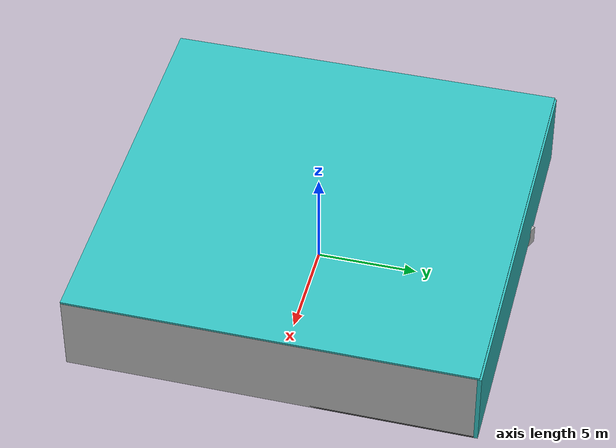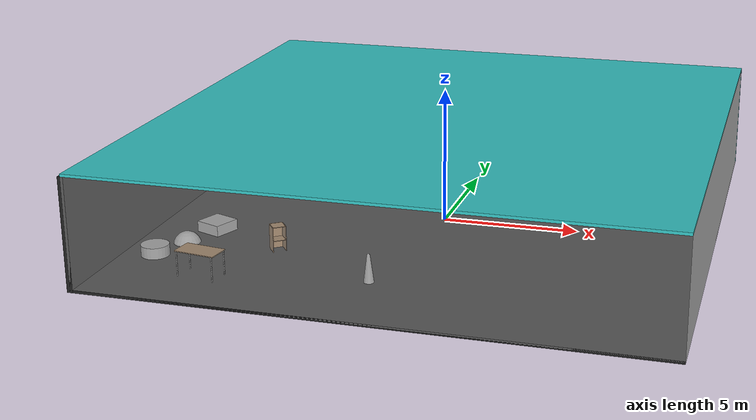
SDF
<sdf version="1.4">
 <world name="default">
  <physics type="ode">
   <max_step_size>0.001</max_step_size>
   <real_time_factor>1</real_time_factor>
   <real_time_update_rate>1000</real_time_update_rate>
   <gravity>0 0 -9.8</gravity>
  </physics>
  <scene><ambient>0.4 0.4 0.4 1</ambient><background>0.7 0.7 0.7 1</background><shadows>1</shadows></scene>
  <model name="Surrounding">
   <static>1</static>
   <link name="Ceiling">
    <collision name="Ceiling_Collision"><geometry><box><size>20 20 0.1</size></box></geometry></collision>
    <visual name="Ceiling_Visual">
     <geometry><box><size>20 20 0.1</size></box></geometry>
     <material>
      <script>
       <uri>file://media/materials/scripts/gazebo.material</uri>
       <name>Gazebo/TurquoiseGlowOutline</name>
      </script>
     </material>
    </visual>
    <pose>0 0 4.05 0 0 0</pose>
   </link>
   <link name="Wall_South">
    <collision name="Wall_South_Collision">
     <geometry><box><size>20 0 4</size></box></geometry>
     <pose>0 0 2 0 -0 0</pose>
    </collision>
    <visual name="Wall_South_Visual">
     <pose>0 0 2 0 -0 0</pose>
     <geometry><box><size>20 0 4</size></box></geometry>
     <material>
      <script><uri>file://media/materials/scripts/gazebo.material</uri><name>Gazebo/GreyTransparent</name></script>
     </material>
    </visual>
    <velocity_decay><linear>0</linear><angular>0</angular></velocity_decay>
    <pose>0 -10 0 0 -0 0</pose>
   </link>
   <link name="Wall_East">
    <collision name="Wall_21_Collision">
     <geometry><box><size>20 0 4</size></box></geometry>
     <pose>0 0 2 0 -0 0</pose>
    </collision>
    <visual name="Wall_21_Visual">
     <pose>0 0 2 0 -0 0</pose>
     <geometry><box><size>20 0 4</size></box></geometry>
     <material>
      <script><uri>file://media/materials/scripts/gazebo.material</uri><name>Gazebo/PioneerBody</name></script>
     </material>
    </visual>
    <velocity_decay><linear>0</linear><angular>0</angular></velocity_decay>
    <pose>10 0 0 0 -0 1.5708</pose>
   </link>
   <link name="Wall_North">
    <collision name="Wall_22_Collision">
     <geometry><box><size>20 0.2 4</size></box></geometry>
     <pose>0 0 2 0 -0 0</pose>
    </collision>
    <visual name="Wall_22_Visual">
     <pose>0 0 2 0 -0 0</pose>
     <geometry><box><size>20 0.2 4</size></box></geometry>
     <material>
      <script><uri>file://media/materials/scripts/gazebo.material</uri><name>Gazebo/TurquoiseGlow</name></script>
     </material>
    </visual>
    <velocity_decay><linear>0</linear><angular>0</angular></velocity_decay>
    <pose>0 10 0 0 -0 0</pose>
   </link>
   <link name="Wall_West">
    <collision name="Wall_23_Collision">
     <geometry><box><size>20 0.2 4</size></box></geometry>
     <pose>0 0 2 0 -0 0</pose>
    </collision>
    <visual name="Wall_23_Visual">
     <pose>0 0 2 0 -0 0</pose>
     <geometry><box><size>20 0.2 4</size></box></geometry>
     <material>
      <script><uri>file://media/materials/scripts/gazebo.material</uri><name>Gazebo/FlatBlack</name></script>
     </material>
    </visual>
    <velocity_decay><linear>0</linear><angular>0</angular></velocity_decay>
    <pose>-10 0 0 0 0 -1.5708</pose>
   </link>
   <link name="Ground_link">
    <collision name="collision">
     <pose>0 0 .05 0 -0 0</pose>
     <geometry><box><size>20 20 0.1</size></box></geometry>
    </collision>
    <visual name="visual">
     <pose>0 0 .05 0 -0 0</pose>
     <geometry><box><size>20 20 0.1</size></box></geometry>
     <material>
      <script><uri>file://media/materials/scripts/gazebo.material</uri><name>Gazebo/Black</name></script>
     </material>
    </visual>
   </link>
   <static>1</static>
  </model>
  <spherical_coordinates>
   <surface_model>EARTH_WGS84</surface_model>
   <latitude_deg>0</latitude_deg>
   <longitude_deg>0</longitude_deg>
   <elevation>0</elevation>
   <heading_deg>0</heading_deg>
  </spherical_coordinates>
  <light name="lightball_0" type="diffuse">
   <diffuse>0.8 0.8 0.8 1</diffuse>
   <specular>0.2 0.2 0.2 1</specular>
   <attenuation>
    <range>100</range>
    <constant>0.7</constant>
    <linear>0.01</linear>
    <quadratic>0.001</quadratic>
   </attenuation>
   <direction>-0.5 0.1 -0.9</direction>
   <pose>6.40358011946 -1.392949718 3.78622532758 0 0 0</pose>
  </light>
  <light name="lightball_1" type="diffuse">
   <diffuse>0.8 0.8 0.8 1</diffuse>
   <specular>0.2 0.2 0.2 1</specular>
   <attenuation>
    <range>100</range>
    <constant>0.7</constant>
    <linear>0.01</linear>
    <quadratic>0.001</quadratic>
   </attenuation>
   <direction>-0.5 0.1 -0.9</direction>
   <pose>-7.4299899187 -7.8426236565 2.88574096612 0 0 0</pose>
  </light>
  <light name="lightball_2" type="diffuse">
   <diffuse>0.8 0.8 0.8 1</diffuse>
   <specular>0.2 0.2 0.2 1</specular>
   <attenuation>
    <range>100</range>
    <constant>0.7</constant>
    <linear>0.01</linear>
    <quadratic>0.001</quadratic>
   </attenuation>
   <direction>-0.5 0.1 -0.9</direction>
   <pose>-0.0926352435098 5.20908102948 3.08021948596 0 0 0</pose>
  </light>
  <include><uri>model://table</uri><pose>-6.38971502615 -7.69991286838 0 0 0 2.9965689337</pose></include>
  <include>
   <uri>model://textured_shapes</uri>
   <pose>-8.17612364504 -4.98100636136 0 0 0 2.76731050413</pose>
  </include>
  <include><uri>model://cabinet</uri><pose>-4.77164624298 -4.80302826405 0 0 0 2.22843247343</pose></include>
  <include>
   <uri>model://textured_shapes</uri>
   <pose>-4.46685339849 8.24410431068 0 0 0 2.6938049553</pose>
  </include>
  <include>
   <uri>model://construction_cone</uri>
   <pose>-0.768899731013 -6.76802634182 0 0 0 2.29372718535</pose>
  </include>
  <include><uri>model://cabinet</uri><pose>4.65669411464 1.06646769629 0 0 0 1.86885308318</pose></include>
 </world>
</sdf>

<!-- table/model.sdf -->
<sdf version="1.5">
  <model name="table">
    <static>true</static>
    <link name="link">
      <collision name="surface">
        <pose>0 0 1.0 0 0 0</pose>
        <geometry>
          <box>
            <size>1.5 0.8 0.03</size>
          </box>
        </geometry>
        <surface>
          <friction>
            <ode>
              <mu>0.6</mu>
              <mu2>0.6</mu2>
            </ode>
          </friction>
        </surface>
      </collision>
      <visual name="visual1">
        <pose>0 0 1.0 0 0 0</pose>
        <geometry>
          <box>
            <size>1.5 0.8 0.03</size>
          </box>
        </geometry>
        <material>
          <script>
            <uri>model://media/materials/scripts/gazebo.material</uri>
            <name>Gazebo/Wood</name>
          </script>
        </material>
      </visual>
      <collision name="front_left_leg">
        <pose>0.68 0.38 0.5 0 0 0</pose>
        <geometry>
          <cylinder>
            <radius>0.02</radius>
            <length>1.0</length>
          </cylinder>
        </geometry>
      </collision>
      <visual name="front_left_leg">
        <pose>0.68 0.38 0.5 0 0 0</pose>
        <geometry>
          <cylinder>
            <radius>0.02</radius>
            <length>1.0</length>
          </cylinder>
        </geometry>
        <material>
          <script>
            <uri>model://media/materials/scripts/gazebo.material</uri>
            <name>Gazebo/Grey</name>
          </script>
        </material>
      </visual>
      <collision name="front_right_leg">
        <pose>0.68 -0.38 0.5 0 0 0</pose>
        <geometry>
          <cylinder>
            <radius>0.02</radius>
            <length>1.0</length>
          </cylinder>
        </geometry>
      </collision>
      <visual name="front_right_leg">
        <pose>0.68 -0.38 0.5 0 0 0</pose>
        <geometry>
          <cylinder>
            <radius>0.02</radius>
            <length>1.0</length>
          </cylinder>
        </geometry>
        <material>
          <script>
            <uri>model://media/materials/scripts/gazebo.material</uri>
            <name>Gazebo/Grey</name>
          </script>
        </material>
      </visual>
      <collision name="back_right_leg">
        <pose>-0.68 -0.38 0.5 0 0 0</pose>
        <geometry>
          <cylinder>
            <radius>0.02</radius>
            <length>1.0</length>
          </cylinder>
        </geometry>
      </collision>
      <visual name="back_right_leg">
        <pose>-0.68 -0.38 0.5 0 0 0</pose>
        <geometry>
          <cylinder>
            <radius>0.02</radius>
            <length>1.0</length>
          </cylinder>
        </geometry>
        <material>
          <script>
            <uri>model://media/materials/scripts/gazebo.material</uri>
            <name>Gazebo/Grey</name>
          </script>
        </material>
      </visual>
      <collision name="back_left_leg">
        <pose>-0.68 0.38 0.5 0 0 0</pose>
        <geometry>
          <cylinder>
            <radius>0.02</radius>
            <length>1.0</length>
          </cylinder>
        </geometry>
      </collision>
      <visual name="back_left_leg">
        <pose>-0.68 0.38 0.5 0 0 0</pose>
        <geometry>
          <cylinder>
            <radius>0.02</radius>
            <length>1.0</length>
          </cylinder>
        </geometry>
        <material>
          <script>
            <uri>model://media/materials/scripts/gazebo.material</uri>
            <name>Gazebo/Grey</name>
          </script>
        </material>
      </visual>
    </link>
  </model>
</sdf>

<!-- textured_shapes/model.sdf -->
<sdf version="1.6">
  <model name="textured_shapes">
    <pose>0 0 0.5 0 0 0</pose>
    <link name="box">
      <pose>0 -1.5 0 0 0 0</pose>
      <collision name="collision">
        <geometry>
          <box>
            <size>1 1 1</size>
          </box>
        </geometry>
      </collision>
      <visual name="visual">
        <geometry>
          <box>
            <size>1 1 1</size>
          </box>
        </geometry>
        <material>
          <script>
            <uri>model://../model_source/models/textured_shapes/materials/scripts</uri>
            <uri>model://../model_source/models/textured_shapes/materials/textures</uri>
            <name>TexturedShape/Squares</name>
          </script>
        </material>
      </visual>
    </link>
    <link name="sphere">
      <collision name="collision">
        <geometry>
          <sphere>
            <radius>0.5</radius>
          </sphere>
        </geometry>
      </collision>
      <visual name="visual">
        <geometry>
          <sphere>
            <radius>0.5</radius>
          </sphere>
        </geometry>
        <material>
          <script>
            <uri>model://../model_source/models/textured_shapes/materials/scripts</uri>
            <uri>model://../model_source/models/textured_shapes/materials/textures</uri>
            <name>TexturedShape/Squares</name>
          </script>
        </material>
      </visual>
    </link>
    <link name="cylinder">
      <pose>0 1.5 0 0 0 0</pose>
      <collision name="collision">
        <geometry>
          <cylinder>
            <radius>0.5</radius>
            <length>1</length>
          </cylinder>
        </geometry>
      </collision>
      <visual name="visual">
        <geometry>
          <cylinder>
            <radius>0.5</radius>
            <length>1</length>
          </cylinder>
        </geometry>
        <material>
          <script>
            <uri>model://../model_source/models/textured_shapes/materials/scripts</uri>
            <uri>model://../model_source/models/textured_shapes/materials/textures</uri>
            <name>TexturedShape/Squares</name>
          </script>
        </material>
      </visual>
    </link>
  </model>
</sdf>

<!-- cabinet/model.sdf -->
<sdf version="1.5">
  <model name="cabinet">
    <static>true</static>
    <link name="cabinet_bottom_plate">
      <inertial>
        <pose>0 0 -1 0 0 0</pose>
        <inertia>
          <ixx>2.050000</ixx>
          <ixy>0</ixy>
          <ixz>0</ixz>
          <iyy>2.050000</iyy>
          <iyz>0</iyz>
          <izz>2.050000</izz>
        </inertia>
        <mass>25.000000</mass>
      </inertial>
      <collision name="cabinet_bottom_plate_geom">
        <pose>0 0 0.010000 0 0 0</pose>
        <geometry>
          <box>
            <size>0.450000 0.450000 0.020000</size>
          </box>
        </geometry>
      </collision>
      <visual name="cabinet_bottom_plate_geom_visual">
        <pose>0 0 0.010000 0 0 0</pose>
        <geometry>
          <box>
            <size>0.450000 0.450000 0.020000</size>
          </box>
        </geometry>
        <material>
          <script>
            <uri>model://media/materials/scripts/gazebo.material</uri>
            <name>Gazebo/Wood</name>
          </script>
        </material>
      </visual>
      <collision name="cabinet_bottom_plate_geom_cabinet_back_plate">
        <pose>0.235000 0 0.510000 0 0 0</pose>
        <geometry>
          <box>
            <size>0.020000 0.450000 1.020000</size>
          </box>
        </geometry>
      </collision>
      <visual name="cabinet_bottom_plate_geom_cabinet_back_plate_visual">
        <pose>0.235000 0 0.510000 0 0 0</pose>
        <geometry>
          <box>
            <size>0.020000 0.450000 1.020000</size>
          </box>
        </geometry>
        <material>
          <script>
            <uri>model://media/materials/scripts/gazebo.material</uri>
            <name>Gazebo/Wood</name>
          </script>
        </material>
      </visual>
      <collision name="cabinet_bottom_plate_geom_cabinet_left_plate">
        <pose>0 0.235000 0.510000 0 0 0</pose>
        <geometry>
          <box>
            <size>0.450000 0.020000 1.020000</size>
          </box>
        </geometry>
      </collision>
      <visual name="cabinet_bottom_plate_geom_cabinet_left_plate_visual">
        <pose>0 0.235000 0.510000 0 0 0</pose>
        <geometry>
          <box>
            <size>0.450000 0.020000 1.020000</size>
          </box>
        </geometry>
        <material>
          <script>
            <uri>model://media/materials/scripts/gazebo.material</uri>
            <name>Gazebo/Wood</name>
          </script>
        </material>
      </visual>
      <collision name="cabinet_bottom_plate_geom_cabinet_middle_plate">
        <pose>0 0 0.510000 0 0 0</pose>
        <geometry>
          <box>
            <size>0.450000 0.450000 0.020000</size>
          </box>
        </geometry>
      </collision>
      <visual name="cabinet_bottom_plate_geom_cabinet_middle_plate_visual">
        <pose>0 0 0.510000 0 0 0</pose>
        <geometry>
          <box>
            <size>0.450000 0.450000 0.020000</size>
          </box>
        </geometry>
        <material>
          <script>
            <uri>model://media/materials/scripts/gazebo.material</uri>
            <name>Gazebo/Wood</name>
          </script>
        </material>
      </visual>
      <collision name="cabinet_bottom_plate_geom_cabinet_right_plate">
        <pose>0 -0.235000 0.510000 0 0 0</pose>
        <geometry>
          <box>
            <size>0.450000 0.020000 1.020000</size>
          </box>
        </geometry>
      </collision>
      <visual name="cabinet_bottom_plate_geom_cabinet_right_plate_visual">
        <pose>0 -0.235000 0.510000 0 0 0</pose>
        <geometry>
          <box>
            <size>0.450000 0.020000 1.020000</size>
          </box>
        </geometry>
        <material>
          <script>
            <uri>model://media/materials/scripts/gazebo.material</uri>
            <name>Gazebo/Wood</name>
          </script>
        </material>
      </visual>
      <collision name="cabinet_bottom_plate_geom_cabinet_top_plate">
        <pose>0 0 1.010000 0 0 0</pose>
        <geometry>
          <box>
            <size>0.450000 0.450000 0.020000</size>
          </box>
        </geometry>
      </collision>
      <visual name="cabinet_bottom_plate_geom_cabinet_top_plate_visual">
        <pose>0 0 1.010000 0 0 0</pose>
        <geometry>
          <box>
            <size>0.450000 0.450000 0.020000</size>
          </box>
        </geometry>
        <material>
          <script>
            <uri>model://media/materials/scripts/gazebo.material</uri>
            <name>Gazebo/Wood</name>
          </script>
        </material>
      </visual>
    </link>
  </model>
</sdf>

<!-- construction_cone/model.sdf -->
<sdf version="1.5">
  <model name="Construction Cone">
    <link name="link">
      <collision name="collision">
        <geometry>
          <mesh>
            <scale>10 10 10</scale>
            <uri>file://isr-testbed/construction_cone/meshes/construction_cone.dae</uri>
          </mesh>
        </geometry>
      </collision>
      <visual name="visual">
        <geometry>
          <mesh>
            <scale>10 10 10</scale>
            <uri>file://isr-testbed/construction_cone/meshes/construction_cone.dae</uri>
          </mesh>
        </geometry>
      </visual>
    </link>
  </model>
</sdf>
